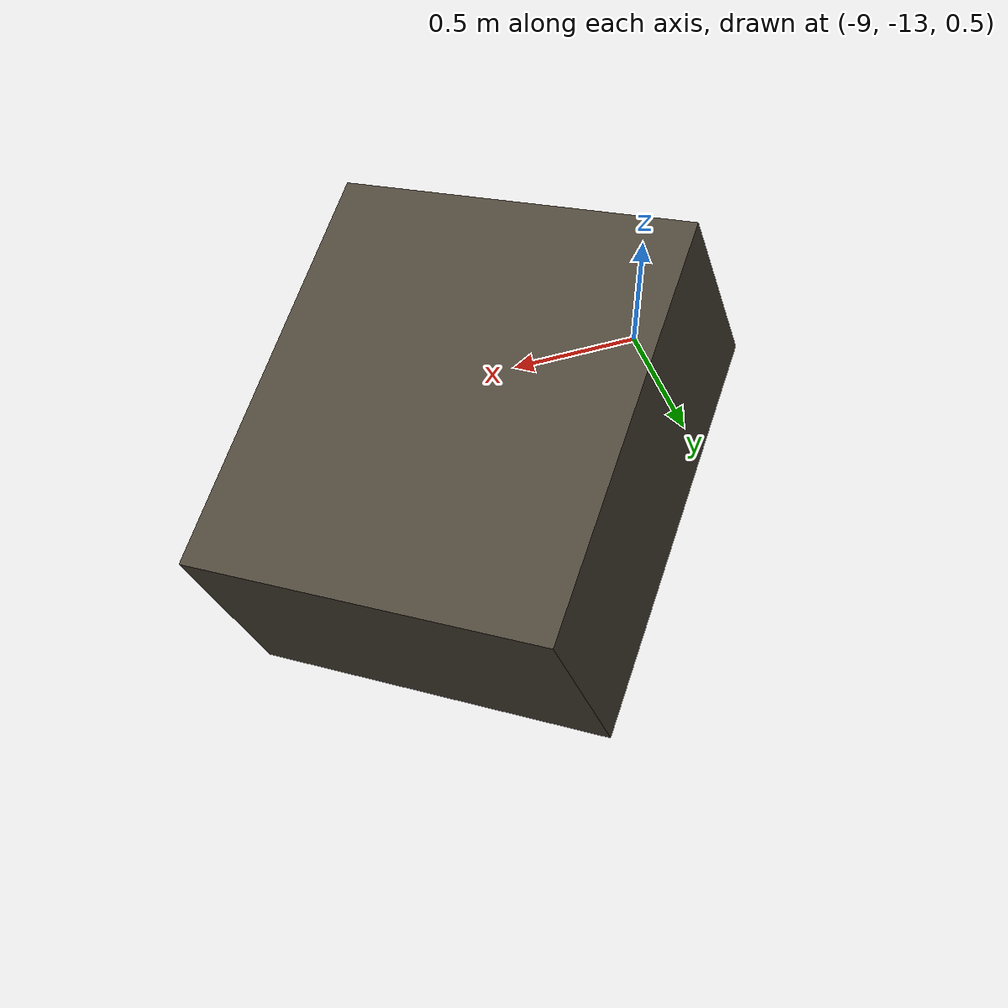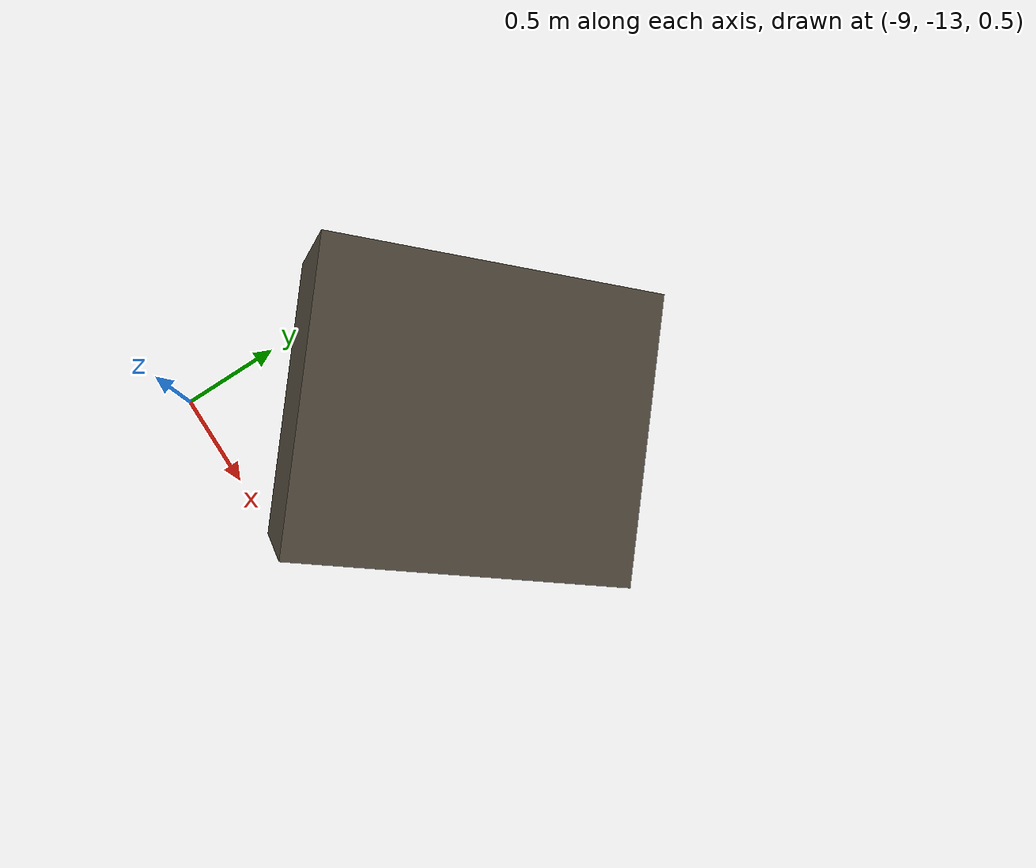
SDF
<sdf version="1.9">
 <world name="lunar_terrain">
  <model name="rock_d">
   <static>true</static>
   <pose>-8 -12 1.25 0.2 0.3 0.9</pose>
   <link name="link">
    <collision name="c"><geometry><box><size>1.4 1.2 0.7</size></box></geometry></collision>
    <visual name="v">
     <geometry><box><size>1.4 1.2 0.7</size></box></geometry>
     <material>
      <ambient>0.19 0.17 0.14 1</ambient>
      <diffuse>0.30 0.27 0.22 1</diffuse>
      <specular>0.06 0.06 0.05 1</specular>
     </material>
    </visual>
   </link>
  </model>
 </world>
</sdf>
